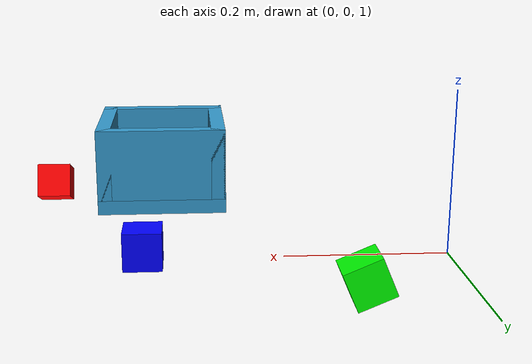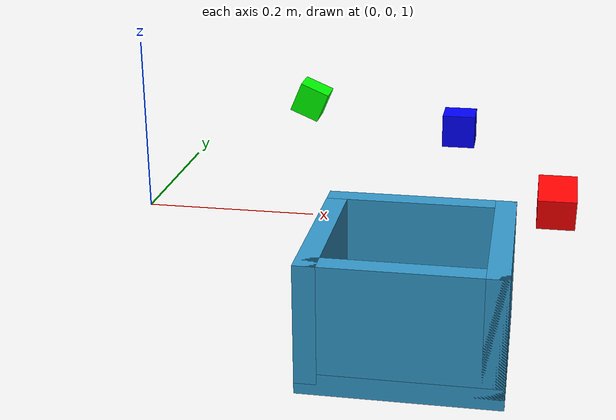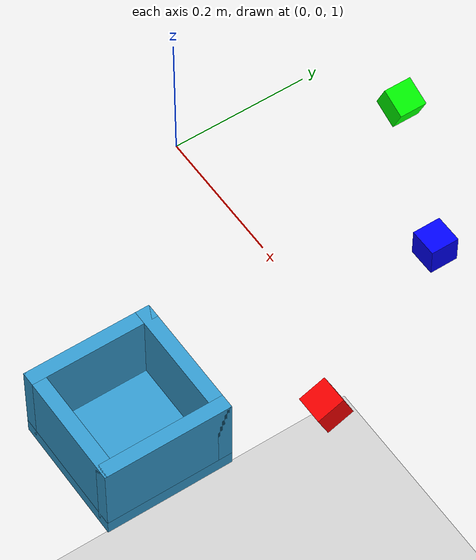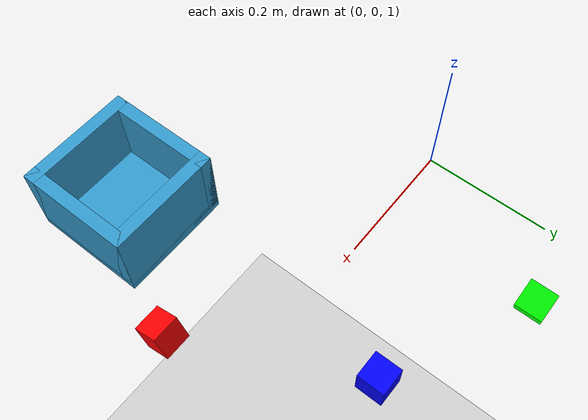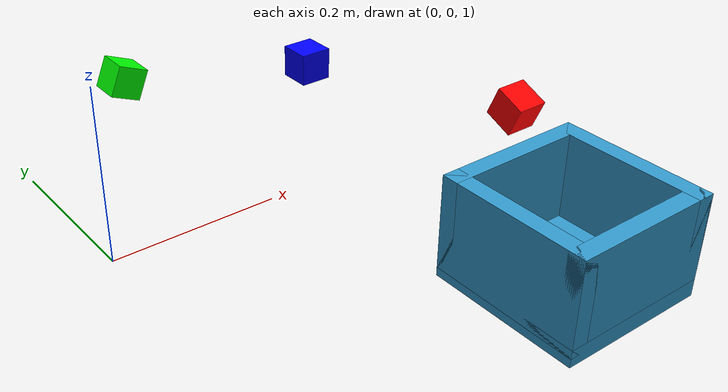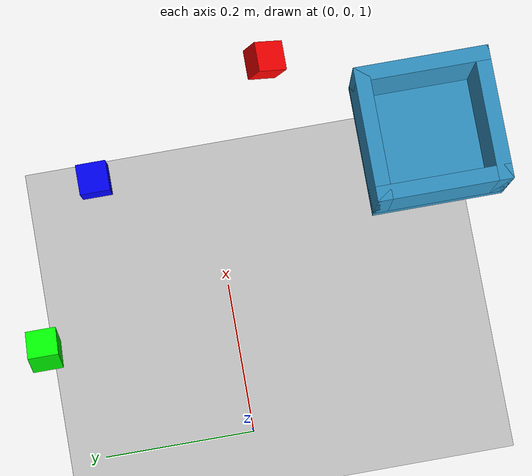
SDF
<sdf version="1.6">
 <world name="arm_and_table">
  <scene><shadows>0</shadows></scene>
  <include><uri>model://sun</uri></include>
  <model name="ground_plane"><static>true</static><include><uri>model://ground_plane</uri></include></model>
  <model name="drop_box">
   <static>true</static>
   <include><uri>model://box</uri></include>
   <pose>0.35 -0.30 1.0 0 0 0</pose>
  </model>
  <model name="cube_red">
   <pose>0.48 -0.10 1.07 0.4 0 0</pose>
   <link name="link">
    <inertial>
     <mass>0.05</mass>
     <inertia><ixx>0.00001</ixx><ixy>0</ixy><ixz>0</ixz><iyy>0.00001</iyy><iyz>0</iyz><izz>0.00001</izz></inertia>
    </inertial>
    <collision name="collision"><geometry><box><size>0.04 0.04 0.04</size></box></geometry></collision>
    <visual name="visual">
     <geometry><box><size>0.04 0.04 0.04</size></box></geometry>
     <material><ambient>1.0 0.0 0.0 1.0</ambient><diffuse>1.0 0.0 0.0 1.0</diffuse></material>
    </visual>
   </link>
  </model>
  <model name="cube_green">
   <pose>0.15 0.25 1.07 0 0.4 0</pose>
   <link name="link">
    <inertial>
     <mass>0.05</mass>
     <inertia><ixx>0.00001</ixx><ixy>0</ixy><ixz>0</ixz><iyy>0.00001</iyy><iyz>0</iyz><izz>0.00001</izz></inertia>
    </inertial>
    <collision name="collision"><geometry><box><size>0.04 0.04 0.04</size></box></geometry></collision>
    <visual name="visual">
     <geometry><box><size>0.04 0.04 0.04</size></box></geometry>
     <material><ambient>0.0 1.0 0.0 1.0</ambient><diffuse>0.0 1.0 0.0 1.0</diffuse></material>
    </visual>
   </link>
  </model>
  <model name="cube_blue">
   <pose>0.36 0.15 1.07 0 0 0</pose>
   <link name="link">
    <inertial>
     <mass>0.05</mass>
     <inertia><ixx>0.00001</ixx><ixy>0</ixy><ixz>0</ixz><iyy>0.00001</iyy><iyz>0</iyz><izz>0.00001</izz></inertia>
    </inertial>
    <collision name="collision"><geometry><box><size>0.04 0.04 0.04</size></box></geometry></collision>
    <visual name="visual">
     <geometry><box><size>0.04 0.04 0.04</size></box></geometry>
     <material><ambient>0.0 0.0 1.0 1.0</ambient><diffuse>0.0 0.0 1.0 1.0</diffuse></material>
    </visual>
   </link>
  </model>
 </world>
</sdf>

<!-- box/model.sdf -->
<sdf version="1.6">
  <model name="box">
    <static>true</static>
    <link name="link">
      <collision name="bottom">
        <pose>0 0 0 0 0 0</pose>
        <geometry>
          <box>
            <size>0.18 0.18 0.02</size>
          </box>
        </geometry>
        <surface>
          <friction>
            <ode>
              <mu>0.6</mu>
              <mu2>0.6</mu2>
            </ode>
          </friction>
        </surface>
      </collision>
      <collision name="front_wall">
        <pose>0 0.08 0.055 0 0 0</pose>
        <geometry>
          <box>
            <size>0.18 0.02 0.11</size>
          </box>
        </geometry>
      </collision>
      <collision name="back_wall">
        <pose>0 -0.08 0.055 0 0 0</pose>
        <geometry>
          <box>
            <size>0.18 0.02 0.11</size>
          </box>
        </geometry>
      </collision>
      <collision name="left_wall">
        <pose>-0.08 0 0.055 0 0 0</pose>
        <geometry>
          <box>
            <size>0.02 0.18 0.11</size>
          </box>
        </geometry>
      </collision>
      <collision name="right_wall">
        <pose>0.08 0 0.055 0 0 0</pose>
        <geometry>
          <box>
            <size>0.02 0.18 0.11</size>
          </box>
        </geometry>
      </collision>
      <visual name="bottom_visual">
        <pose>0 0 0 0 0 0</pose>
        <geometry>
          <box>
            <size>0.18 0.18 0.02</size>
          </box>
        </geometry>
        <material>
          <ambient>0.2 0.6 0.8 1.0</ambient>
          <diffuse>0.2 0.6 0.8 1.0</diffuse>
        </material>
      </visual>
      <visual name="front_wall_visual">
        <pose>0 0.08 0.055 0 0 0</pose>
        <geometry>
          <box>
            <size>0.18 0.02 0.11</size>
          </box>
        </geometry>
        <material>
          <ambient>0.2 0.6 0.8 1.0</ambient>
          <diffuse>0.2 0.6 0.8 1.0</diffuse>
        </material>
      </visual>
      <visual name="back_wall_visual">
        <pose>0 -0.08 0.055 0 0 0</pose>
        <geometry>
          <box>
            <size>0.18 0.02 0.11</size>
          </box>
        </geometry>
        <material>
          <ambient>0.2 0.6 0.8 1.0</ambient>
          <diffuse>0.2 0.6 0.8 1.0</diffuse>
        </material>
      </visual>
      <visual name="left_wall_visual">
        <pose>-0.08 0 0.055 0 0 0</pose>
        <geometry>
          <box>
            <size>0.02 0.18 0.11</size>
          </box>
        </geometry>
        <material>
          <ambient>0.2 0.6 0.8 1.0</ambient>
          <diffuse>0.2 0.6 0.8 1.0</diffuse>
        </material>
      </visual>
      <visual name="right_wall_visual">
        <pose>0.08 0 0.055 0 0 0</pose>
        <geometry>
          <box>
            <size>0.02 0.18 0.11</size>
          </box>
        </geometry>
        <material>
          <ambient>0.2 0.6 0.8 1.0</ambient>
          <diffuse>0.2 0.6 0.8 1.0</diffuse>
        </material>
      </visual>
    </link>
  </model>
</sdf>
